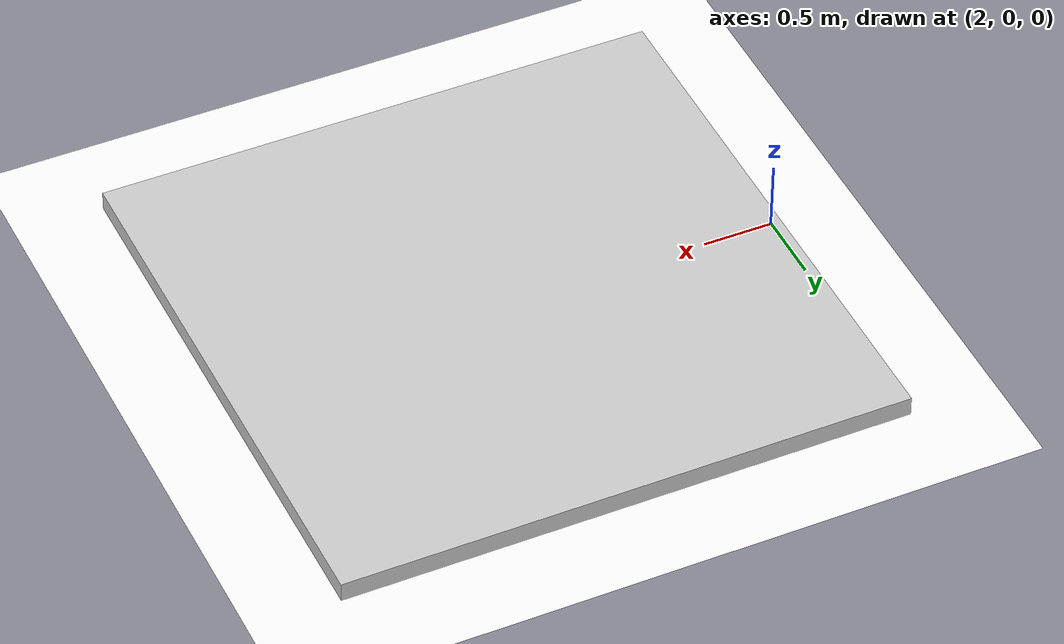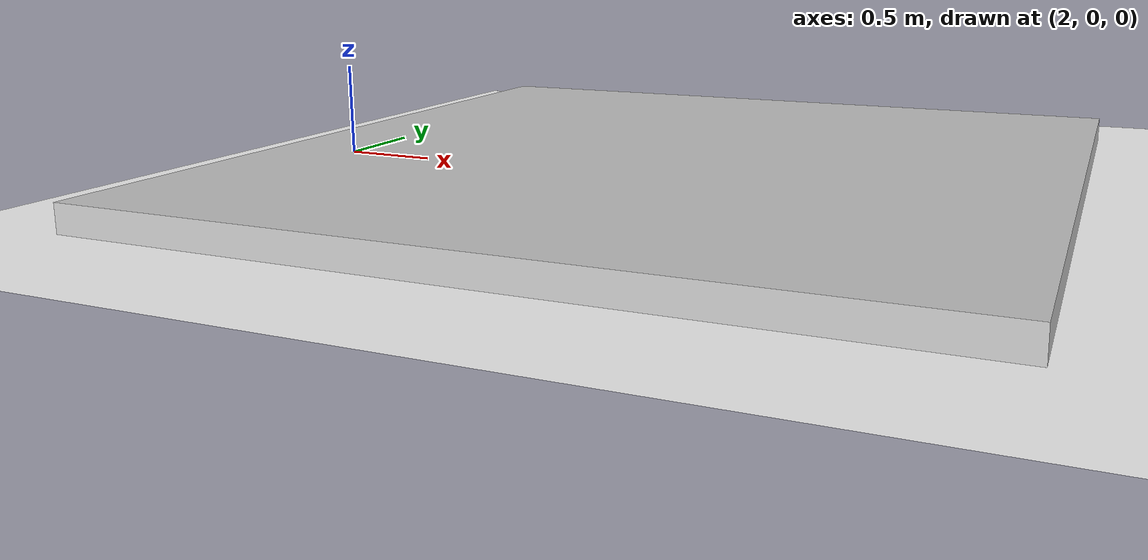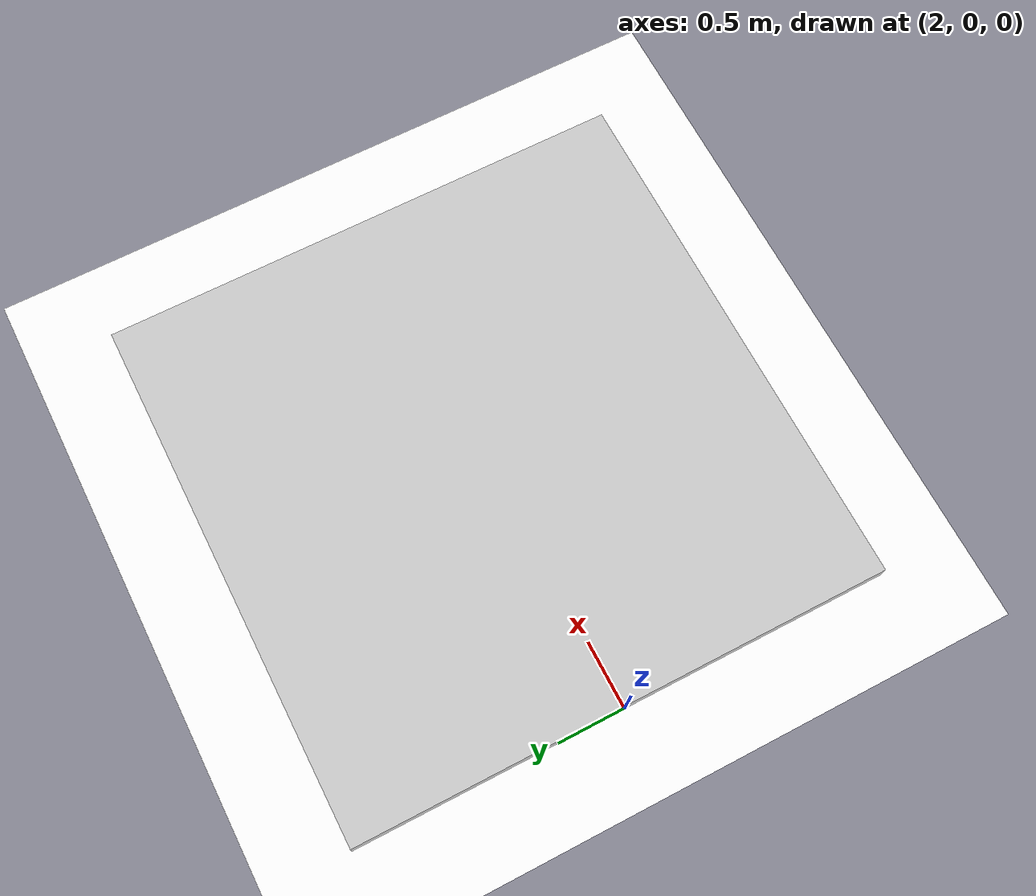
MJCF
<mujoco>

  <asset>
    <texture name="texplane" type="2d" builtin="checker" rgb1="1 1 1" rgb2="1 1 1" width="512" height="512" mark="cross" markrgb="0 0 0"/>
    <material name="matplane" reflectance="0.0" texture="texplane" texrepeat="1 1" texuniform="true"/>
  </asset>

  <worldbody>
    <geom group="1" name="floor" pos="0 0 0" size="0 0 0.25" type="plane" material="matplane" condim="3" contype="2" conaffinity="1"/>
    <geom group="1" type="box" pos=" 4.0 0 0.07" size="2.00 2.00 0.07" rgba="0.8 0.8 0.8 1" friction="1 0.005 0.0001" contype="2" conaffinity="1"/>
  </worldbody>

</mujoco>
